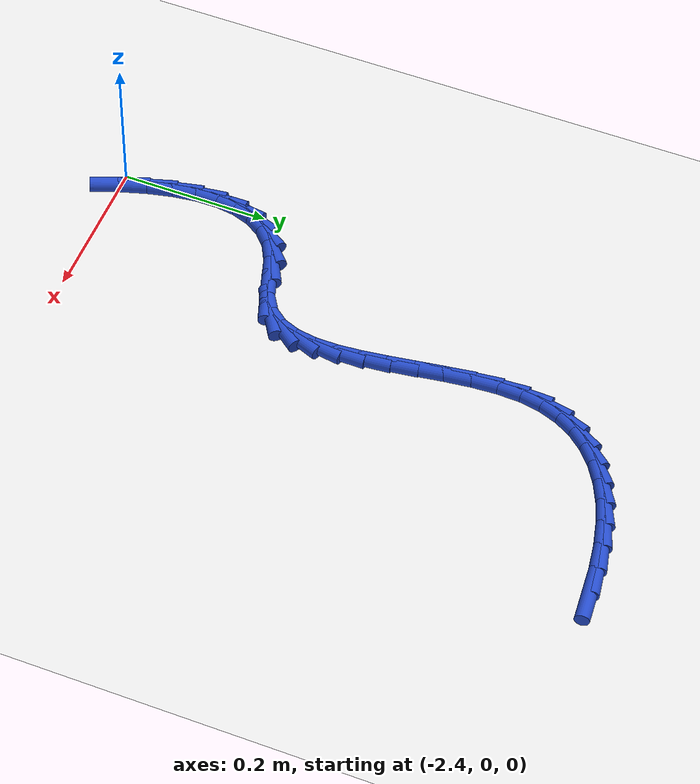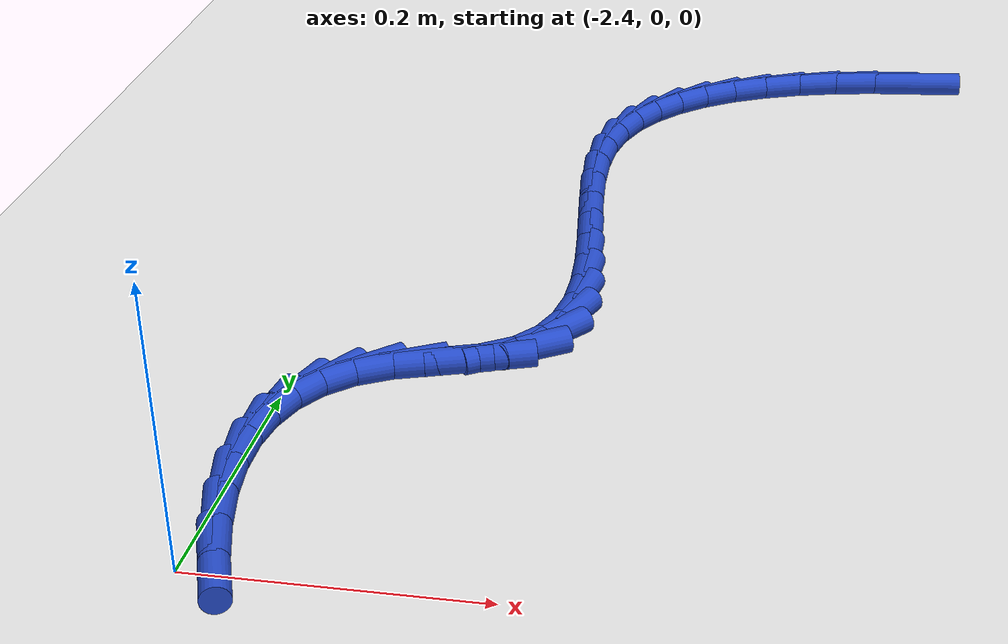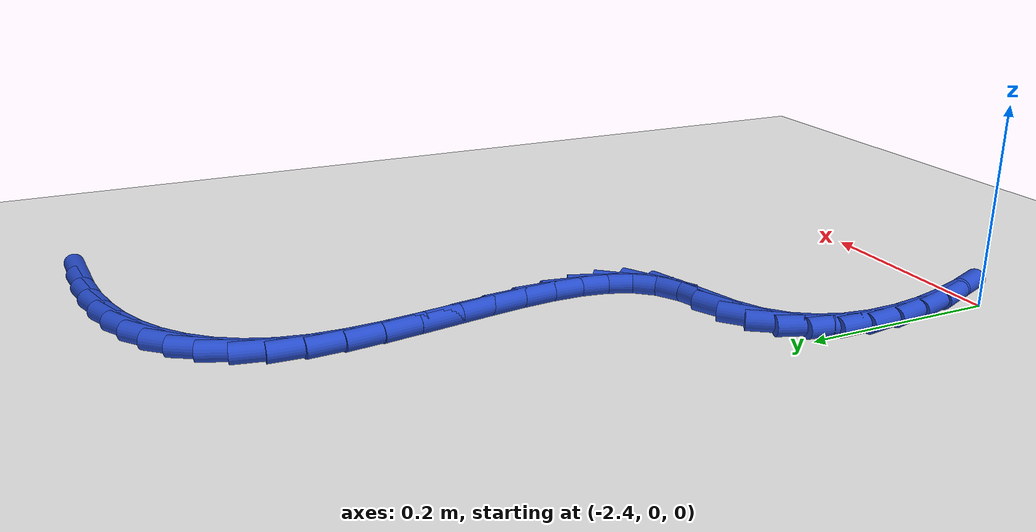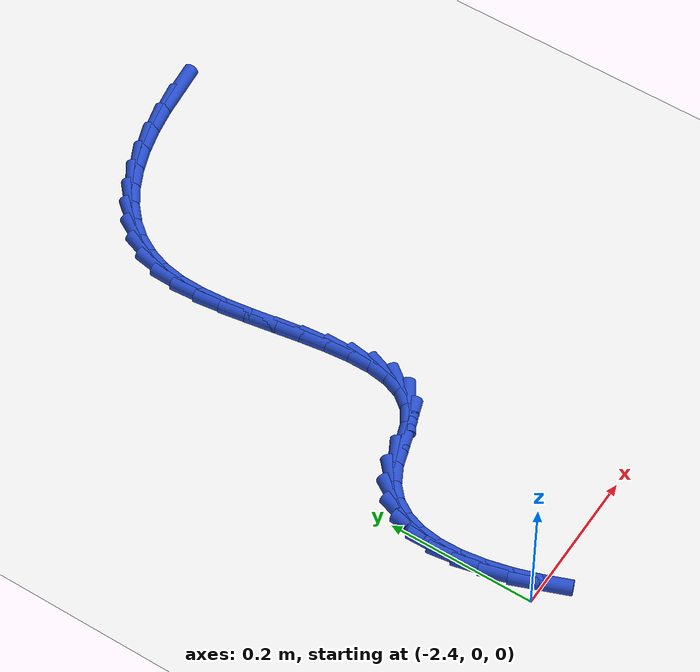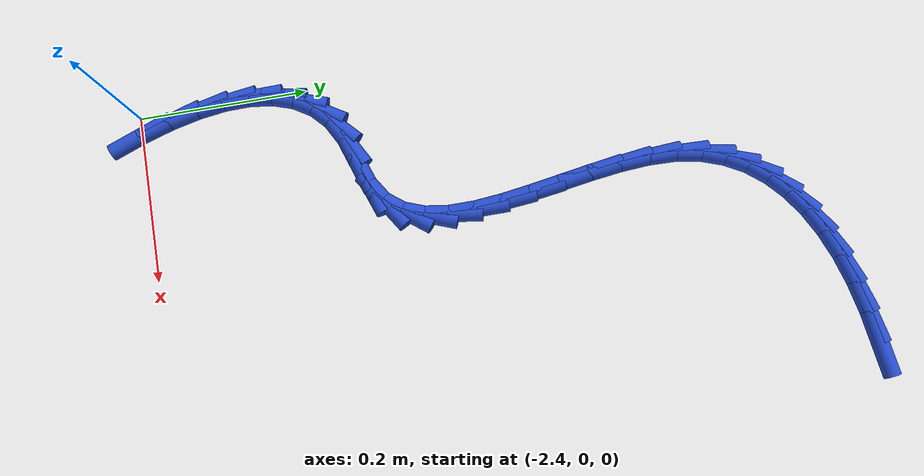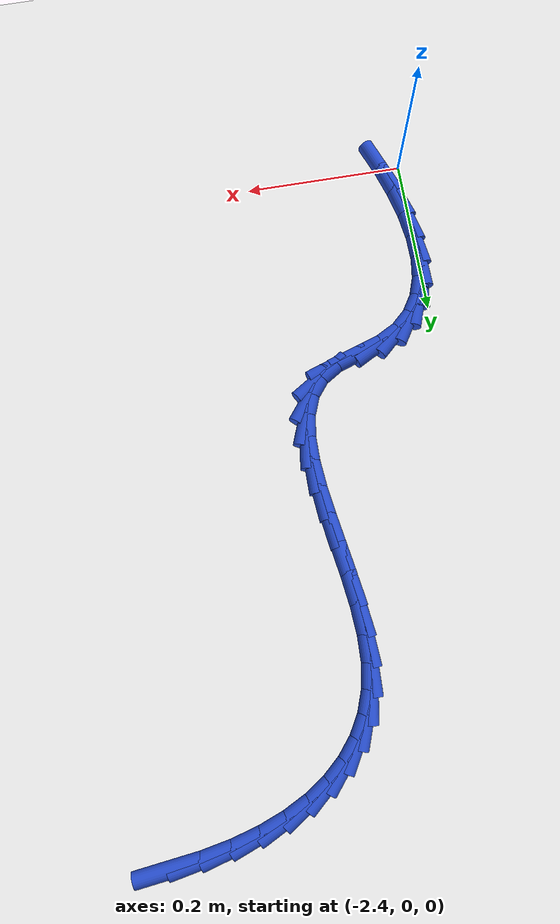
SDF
<sdf version="1.6">
 <world name="default">
  <model name="ground_plane">
   <static>1</static>
   <link name="link">
    <collision name="collision">
     <geometry><plane><normal>0 0 1</normal><size>100 100</size></plane></geometry>
     <surface><friction><ode><mu>100</mu><mu2>50</mu2></ode></friction></surface>
    </collision>
    <visual name="visual">
     <cast_shadows>0</cast_shadows>
     <geometry><plane><normal>0 0 1</normal><size>100 100</size></plane></geometry>
     <material>
      <script><uri>file://media/materials/scripts/gazebo.material</uri><name>Gazebo/WhiteGlow</name></script>
     </material>
    </visual>
   </link>
  </model>
  <model name="line">
   <link name="link_106">
    <pose>-1.9858627351645635 0.8047121164830364 0.01 0 1.57 0.11327635669523209</pose>
    <collision name="collision">
     <geometry><cylinder><radius>0.01</radius><length>0.08</length></cylinder></geometry>
    </collision>
    <visual name="visual">
     <material>
      <script><name>Gazebo/Blue</name><uri>file://media/materials/scripts/gazebo.material</uri></script>
     </material>
     <geometry><cylinder><radius>0.01</radius><length>0.08</length></cylinder></geometry>
    </visual>
   </link>
   <link name="link_107">
    <pose>-2.023867355747637 0.800388583167166 0.01 0 1.57 0.18204851551398396</pose>
    <collision name="collision">
     <geometry><cylinder><radius>0.01</radius><length>0.08</length></cylinder></geometry>
    </collision>
    <visual name="visual">
     <material>
      <script><name>Gazebo/Blue</name><uri>file://media/materials/scripts/gazebo.material</uri></script>
     </material>
     <geometry><cylinder><radius>0.01</radius><length>0.08</length></cylinder></geometry>
    </visual>
   </link>
   <link name="link_108">
    <pose>-2.059727833835444 0.7937871472063288 0.01 0 1.57 0.2610992621326239</pose>
    <collision name="collision">
     <geometry><cylinder><radius>0.01</radius><length>0.08</length></cylinder></geometry>
    </collision>
    <visual name="visual">
     <material>
      <script><name>Gazebo/Blue</name><uri>file://media/materials/scripts/gazebo.material</uri></script>
     </material>
     <geometry><cylinder><radius>0.01</radius><length>0.08</length></cylinder></geometry>
    </visual>
   </link>
   <link name="link_109">
    <pose>-2.093193831368542 0.7848450681184735 0.01 0 1.57 0.35271301119265797</pose>
    <collision name="collision">
     <geometry><cylinder><radius>0.01</radius><length>0.08</length></cylinder></geometry>
    </collision>
    <visual name="visual">
     <material>
      <script><name>Gazebo/Blue</name><uri>file://media/materials/scripts/gazebo.material</uri></script>
     </material>
     <geometry><cylinder><radius>0.01</radius><length>0.08</length></cylinder></geometry>
    </visual>
   </link>
   <link name="link_110">
    <pose>-2.124015010287493 0.7734996054215495 0.01 0 1.57 0.4593003368891888</pose>
    <collision name="collision">
     <geometry><cylinder><radius>0.01</radius><length>0.08</length></cylinder></geometry>
    </collision>
    <visual name="visual">
     <material>
      <script><name>Gazebo/Blue</name><uri>file://media/materials/scripts/gazebo.material</uri></script>
     </material>
     <geometry><cylinder><radius>0.01</radius><length>0.08</length></cylinder></geometry>
    </visual>
   </link>
   <link name="link_111">
    <pose>-2.1519410325328585 0.7596880186335055 0.01 0 1.57 0.5829597719890989</pose>
    <collision name="collision">
     <geometry><cylinder><radius>0.01</radius><length>0.08</length></cylinder></geometry>
    </collision>
    <visual name="visual">
     <material>
      <script><name>Gazebo/Blue</name><uri>file://media/materials/scripts/gazebo.material</uri></script>
     </material>
     <geometry><cylinder><radius>0.01</radius><length>0.08</length></cylinder></geometry>
    </visual>
   </link>
   <link name="link_112">
    <pose>-2.176721560045198 0.7433475672722899 0.01 0 1.57 0.7246388175192355</pose>
    <collision name="collision">
     <geometry><cylinder><radius>0.01</radius><length>0.08</length></cylinder></geometry>
    </collision>
    <visual name="visual">
     <material>
      <script><name>Gazebo/Blue</name><uri>file://media/materials/scripts/gazebo.material</uri></script>
     </material>
     <geometry><cylinder><radius>0.01</radius><length>0.08</length></cylinder></geometry>
    </visual>
   </link>
   <link name="link_113">
    <pose>-2.198106254765075 0.7244155108558515 0.01 0 1.57 0.8829359929580558</pose>
    <collision name="collision">
     <geometry><cylinder><radius>0.01</radius><length>0.08</length></cylinder></geometry>
    </collision>
    <visual name="visual">
     <material>
      <script><name>Gazebo/Blue</name><uri>file://media/materials/scripts/gazebo.material</uri></script>
     </material>
     <geometry><cylinder><radius>0.01</radius><length>0.08</length></cylinder></geometry>
    </visual>
   </link>
   <link name="link_114">
    <pose>-2.2158447786330484 0.7028291089021401 0.01 0 1.57 1.0530686500386899</pose>
    <collision name="collision">
     <geometry><cylinder><radius>0.01</radius><length>0.08</length></cylinder></geometry>
    </collision>
    <visual name="visual">
     <material>
      <script><name>Gazebo/Blue</name><uri>file://media/materials/scripts/gazebo.material</uri></script>
     </material>
     <geometry><cylinder><radius>0.01</radius><length>0.08</length></cylinder></geometry>
    </visual>
   </link>
   <link name="link_115">
    <pose>-2.2296867935896785 0.6785256209291035 0.01 0 1.57 1.2270339668706742</pose>
    <collision name="collision">
     <geometry><cylinder><radius>0.01</radius><length>0.08</length></cylinder></geometry>
    </collision>
    <visual name="visual">
     <material>
      <script><name>Gazebo/Blue</name><uri>file://media/materials/scripts/gazebo.material</uri></script>
     </material>
     <geometry><cylinder><radius>0.01</radius><length>0.08</length></cylinder></geometry>
    </visual>
   </link>
   <link name="link_116">
    <pose>-2.2393819615755284 0.6514423064546913 0.01 0 1.57 1.39549840207446</pose>
    <collision name="collision">
     <geometry><cylinder><radius>0.01</radius><length>0.08</length></cylinder></geometry>
    </collision>
    <visual name="visual">
     <material>
      <script><name>Gazebo/Blue</name><uri>file://media/materials/scripts/gazebo.material</uri></script>
     </material>
     <geometry><cylinder><radius>0.01</radius><length>0.08</length></cylinder></geometry>
    </visual>
   </link>
   <link name="link_117">
    <pose>-2.2446820804936656 0.6215177216523261 0.01 0 1.57 1.5389511195128491</pose>
    <collision name="collision">
     <geometry><cylinder><radius>0.01</radius><length>0.08</length></cylinder></geometry>
    </collision>
    <visual name="visual">
     <material>
      <script><name>Gazebo/Blue</name><uri>file://media/materials/scripts/gazebo.material</uri></script>
     </material>
     <geometry><cylinder><radius>0.01</radius><length>0.08</length></cylinder></geometry>
    </visual>
   </link>
   <link name="link_118">
    <pose>-2.2457204485320954 0.5889220159145304 0.01 0 1.57 -1.5052390340585156</pose>
    <collision name="collision">
     <geometry><cylinder><radius>0.01</radius><length>0.08</length></cylinder></geometry>
    </collision>
    <visual name="visual">
     <material>
      <script><name>Gazebo/Blue</name><uri>file://media/materials/scripts/gazebo.material</uri></script>
     </material>
     <geometry><cylinder><radius>0.01</radius><length>0.08</length></cylinder></geometry>
    </visual>
   </link>
   <link name="link_119">
    <pose>-2.2434489267731688 0.5543222546866309 0.01 0 1.57 -1.4453540586588223</pose>
    <collision name="collision">
     <geometry><cylinder><radius>0.01</radius><length>0.08</length></cylinder></geometry>
    </collision>
    <visual name="visual">
     <material>
      <script><name>Gazebo/Blue</name><uri>file://media/materials/scripts/gazebo.material</uri></script>
     </material>
     <geometry><cylinder><radius>0.01</radius><length>0.08</length></cylinder></geometry>
    </visual>
   </link>
   <link name="link_120">
    <pose>-2.2389252486880173 0.518449774210857 0.01 0 1.57 -1.4150374082191683</pose>
    <collision name="collision">
     <geometry><cylinder><radius>0.01</radius><length>0.08</length></cylinder></geometry>
    </collision>
    <visual name="visual">
     <material>
      <script><name>Gazebo/Blue</name><uri>file://media/materials/scripts/gazebo.material</uri></script>
     </material>
     <geometry><cylinder><radius>0.01</radius><length>0.08</length></cylinder></geometry>
    </visual>
   </link>
   <link name="link_121">
    <pose>-2.2332071477477693 0.48203591072943763 0.01 0 1.57 -1.4105543164436198</pose>
    <collision name="collision">
     <geometry><cylinder><radius>0.01</radius><length>0.08</length></cylinder></geometry>
    </collision>
    <visual name="visual">
     <material>
      <script><name>Gazebo/Blue</name><uri>file://media/materials/scripts/gazebo.material</uri></script>
     </material>
     <geometry><cylinder><radius>0.01</radius><length>0.08</length></cylinder></geometry>
    </visual>
   </link>
   <link name="link_122">
    <pose>-2.227352357423555 0.4458120004846015 0.01 0 1.57 -1.4319398926431857</pose>
    <collision name="collision">
     <geometry><cylinder><radius>0.01</radius><length>0.08</length></cylinder></geometry>
    </collision>
    <visual name="visual">
     <material>
      <script><name>Gazebo/Blue</name><uri>file://media/materials/scripts/gazebo.material</uri></script>
     </material>
     <geometry><cylinder><radius>0.01</radius><length>0.08</length></cylinder></geometry>
    </visual>
   </link>
   <link name="link_123">
    <pose>-2.2224186111865056 0.4105093797185789 0.01 0 1.57 -1.483206182011222</pose>
    <collision name="collision">
     <geometry><cylinder><radius>0.01</radius><length>0.08</length></cylinder></geometry>
    </collision>
    <visual name="visual">
     <material>
      <script><name>Gazebo/Blue</name><uri>file://media/materials/scripts/gazebo.material</uri></script>
     </material>
     <geometry><cylinder><radius>0.01</radius><length>0.08</length></cylinder></geometry>
    </visual>
   </link>
   <link name="link_124">
    <pose>-2.219463642507752 0.3768593846735984 0.01 0 1.57 1.5681883155520913</pose>
    <collision name="collision">
     <geometry><cylinder><radius>0.01</radius><length>0.08</length></cylinder></geometry>
    </collision>
    <visual name="visual">
     <material>
      <script><name>Gazebo/Blue</name><uri>file://media/materials/scripts/gazebo.material</uri></script>
     </material>
     <geometry><cylinder><radius>0.01</radius><length>0.08</length></cylinder></geometry>
    </visual>
   </link>
   <link name="link_125">
    <pose>-2.2195451848584233 0.3455933515918892 0.01 0 1.57 1.4235334831728597</pose>
    <collision name="collision">
     <geometry><cylinder><radius>0.01</radius><length>0.08</length></cylinder></geometry>
    </collision>
    <visual name="visual">
     <material>
      <script><name>Gazebo/Blue</name><uri>file://media/materials/scripts/gazebo.material</uri></script>
     </material>
     <geometry><cylinder><radius>0.01</radius><length>0.08</length></cylinder></geometry>
    </visual>
   </link>
   <link name="link_126">
    <pose>-2.223720971709651 0.31744261671567997 0.01 0 1.57 1.2043383369758502</pose>
    <collision name="collision">
     <geometry><cylinder><radius>0.01</radius><length>0.08</length></cylinder></geometry>
    </collision>
    <visual name="visual">
     <material>
      <script><name>Gazebo/Blue</name><uri>file://media/materials/scripts/gazebo.material</uri></script>
     </material>
     <geometry><cylinder><radius>0.01</radius><length>0.08</length></cylinder></geometry>
    </visual>
   </link>
   <link name="link_127">
    <pose>-2.233048736532565 0.29313851628720067 0.01 0 1.57 0.9036254193011871</pose>
    <collision name="collision">
     <geometry><cylinder><radius>0.01</radius><length>0.08</length></cylinder></geometry>
    </collision>
    <visual name="visual">
     <material>
      <script><name>Gazebo/Blue</name><uri>file://media/materials/scripts/gazebo.material</uri></script>
     </material>
     <geometry><cylinder><radius>0.01</radius><length>0.08</length></cylinder></geometry>
    </visual>
   </link>
   <link name="link_128">
    <pose>-2.248586212798295 0.27341238654868016 0.01 0 1.57 0.5642532545431755</pose>
    <collision name="collision">
     <geometry><cylinder><radius>0.01</radius><length>0.08</length></cylinder></geometry>
    </collision>
    <visual name="visual">
     <material>
      <script><name>Gazebo/Blue</name><uri>file://media/materials/scripts/gazebo.material</uri></script>
     </material>
     <geometry><cylinder><radius>0.01</radius><length>0.08</length></cylinder></geometry>
    </visual>
   </link>
   <link name="link_129">
    <pose>-2.2713792959729675 0.25898686128994985 0.01 0 1.57 0.33076673875305607</pose>
    <collision name="collision">
     <geometry><cylinder><radius>0.01</radius><length>0.08</length></cylinder></geometry>
    </collision>
    <visual name="visual">
     <material>
      <script><name>Gazebo/Blue</name><uri>file://media/materials/scripts/gazebo.material</uri></script>
     </material>
     <geometry><cylinder><radius>0.01</radius><length>0.08</length></cylinder></geometry>
    </visual>
   </link>
   <link name="link_130">
    <pose>-2.3003644646232893 0.24903388225880918 0.01 0 1.57 0.314753616299219</pose>
    <collision name="collision">
     <geometry><cylinder><radius>0.01</radius><length>0.08</length></cylinder></geometry>
    </collision>
    <visual name="visual">
     <material>
      <script><name>Gazebo/Blue</name><uri>file://media/materials/scripts/gazebo.material</uri></script>
     </material>
     <geometry><cylinder><radius>0.01</radius><length>0.08</length></cylinder></geometry>
    </visual>
   </link>
   <link name="link_131">
    <pose>-2.3299546473663684 0.2394000016555901 0.01 0 1.57 0.49143339069560144</pose>
    <collision name="collision">
     <geometry><cylinder><radius>0.01</radius><length>0.08</length></cylinder></geometry>
    </collision>
    <visual name="visual">
     <material>
      <script><name>Gazebo/Blue</name><uri>file://media/materials/scripts/gazebo.material</uri></script>
     </material>
     <geometry><cylinder><radius>0.01</radius><length>0.08</length></cylinder></geometry>
    </visual>
   </link>
   <link name="link_132">
    <pose>-2.3547760860254767 0.2261148043963125 0.01 0 1.57 0.7474407311981952</pose>
    <collision name="collision">
     <geometry><cylinder><radius>0.01</radius><length>0.08</length></cylinder></geometry>
    </collision>
    <visual name="visual">
     <material>
      <script><name>Gazebo/Blue</name><uri>file://media/materials/scripts/gazebo.material</uri></script>
     </material>
     <geometry><cylinder><radius>0.01</radius><length>0.08</length></cylinder></geometry>
    </visual>
   </link>
   <link name="link_133">
    <pose>-2.373763515203092 0.20851673414421418 0.01 0 1.57 1.0080984331198468</pose>
    <collision name="collision">
     <geometry><cylinder><radius>0.01</radius><length>0.08</length></cylinder></geometry>
    </collision>
    <visual name="visual">
     <material>
      <script><name>Gazebo/Blue</name><uri>file://media/materials/scripts/gazebo.material</uri></script>
     </material>
     <geometry><cylinder><radius>0.01</radius><length>0.08</length></cylinder></geometry>
    </visual>
   </link>
   <link name="link_134">
    <pose>-2.3872991722227215 0.18705589524888727 0.01 0 1.57 1.2426800160260967</pose>
    <collision name="collision">
     <geometry><cylinder><radius>0.01</radius><length>0.08</length></cylinder></geometry>
    </collision>
    <visual name="visual">
     <material>
      <script><name>Gazebo/Blue</name><uri>file://media/materials/scripts/gazebo.material</uri></script>
     </material>
     <geometry><cylinder><radius>0.01</radius><length>0.08</length></cylinder></geometry>
    </visual>
   </link>
   <link name="link_135">
    <pose>-2.3957663676934913 0.16218321632741098 0.01 0 1.57 1.4357428766274067</pose>
    <collision name="collision">
     <geometry><cylinder><radius>0.01</radius><length>0.08</length></cylinder></geometry>
    </collision>
    <visual name="visual">
     <material>
      <script><name>Gazebo/Blue</name><uri>file://media/materials/scripts/gazebo.material</uri></script>
     </material>
     <geometry><cylinder><radius>0.01</radius><length>0.08</length></cylinder></geometry>
    </visual>
   </link>
   <link name="link_136">
    <pose>-2.3995484122245276 0.13434962599686592 0.01 0 1.57 -1.5536676596480066</pose>
    <collision name="collision">
     <geometry><cylinder><radius>0.01</radius><length>0.08</length></cylinder></geometry>
    </collision>
    <visual name="visual">
     <material>
      <script><name>Gazebo/Blue</name><uri>file://media/materials/scripts/gazebo.material</uri></script>
     </material>
     <geometry><cylinder><radius>0.01</radius><length>0.08</length></cylinder></geometry>
    </visual>
   </link>
   <link name="link_137">
    <pose>-2.399028616424959 0.10400605287433144 0.01 0 1.57 -1.4346691968958685</pose>
    <collision name="collision">
     <geometry><cylinder><radius>0.01</radius><length>0.08</length></cylinder></geometry>
    </collision>
    <visual name="visual">
     <material>
      <script><name>Gazebo/Blue</name><uri>file://media/materials/scripts/gazebo.material</uri></script>
     </material>
     <geometry><cylinder><radius>0.01</radius><length>0.08</length></cylinder></geometry>
    </visual>
   </link>
   <link name="link_138">
    <pose>-2.394590290903912 0.0716034255768872 0.01 0 1.57 -1.3405133487344358</pose>
    <collision name="collision">
     <geometry><cylinder><radius>0.01</radius><length>0.08</length></cylinder></geometry>
    </collision>
    <visual name="visual">
     <material>
      <script><name>Gazebo/Blue</name><uri>file://media/materials/scripts/gazebo.material</uri></script>
     </material>
     <geometry><cylinder><radius>0.01</radius><length>0.08</length></cylinder></geometry>
    </visual>
   </link>
   <link name="link_139">
    <pose>-2.386616746270513 0.037592672721612985 0.01 0 1.57 -1.2644059730088895</pose>
    <collision name="collision">
     <geometry><cylinder><radius>0.01</radius><length>0.08</length></cylinder></geometry>
    </collision>
    <visual name="visual">
     <material>
      <script><name>Gazebo/Blue</name><uri>file://media/materials/scripts/gazebo.material</uri></script>
     </material>
     <geometry><cylinder><radius>0.01</radius><length>0.08</length></cylinder></geometry>
    </visual>
   </link>
   <link name="link_140">
    <pose>-2.37549129313389 0.0024247229255879438 0.01 0 1.57 -1.2012867547121409</pose>
    <collision name="collision">
     <geometry><cylinder><radius>0.01</radius><length>0.08</length></cylinder></geometry>
    </collision>
    <visual name="visual">
     <material>
      <script><name>Gazebo/Blue</name><uri>file://media/materials/scripts/gazebo.material</uri></script>
     </material>
     <geometry><cylinder><radius>0.01</radius><length>0.08</length></cylinder></geometry>
    </visual>
   </link>
  </model>
 </world>
</sdf>
